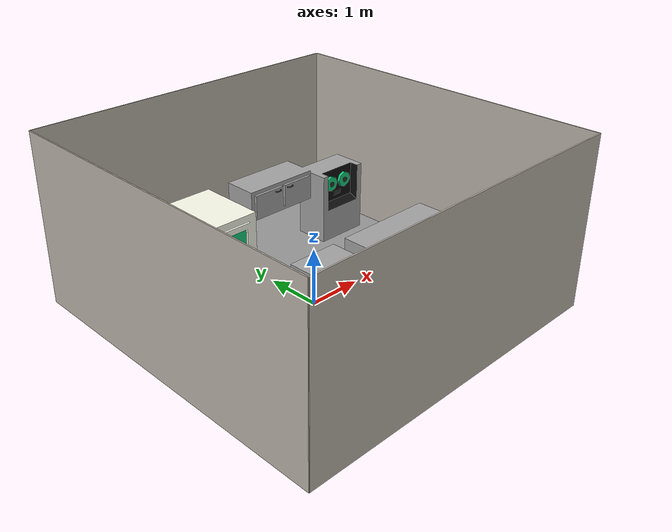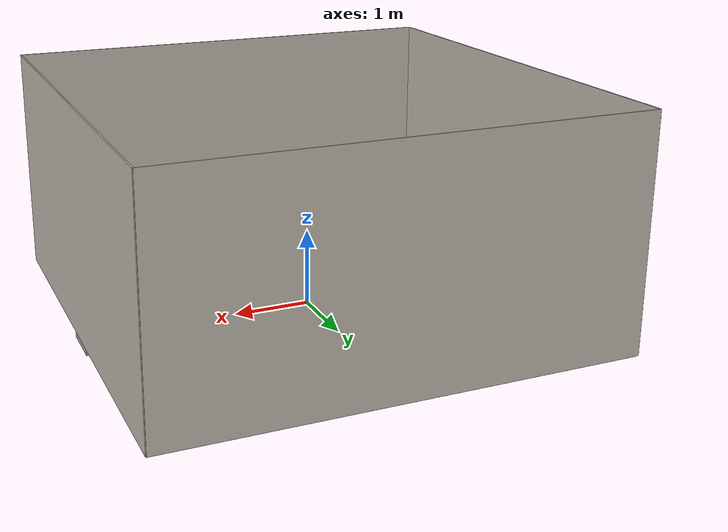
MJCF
<mujoco model="lab">
  <compiler angle="radian" autolimits="true"/>

  <default>
    <default class="visual">
      <geom group="0" type="mesh" contype="0" conaffinity="0"/>
    </default>
    <default class="collision">
      <geom group="3" type="mesh"/>
    </default>
  </default>

    <asset>
        <texture type="skybox" builtin="gradient" rgb1=".9 .9 .9" rgb2=".9 .9 .9" width="100" height="100"/>
        <texture file="textures/floor_gray.png" type="2d" name="texplane"/>

        <material name="floorplane" reflectance="0.0" shininess="0.0"
	        specular="0.0" texrepeat="3 3" texture="texplane" texuniform="true"/>
        <texture file="textures/plaster0.png" type="2d" name="tex-wall"/>
        <material name="walls_mat" reflectance="0.0" shininess="0.1" specular="0.8" texrepeat="3 3" texture="tex-wall" texuniform="true" />
        <material name="white" rgba="1 1 1 1"/>
        <material name="gray" rgba="0.753 0.753 0.753 1"/>
        <material name="black" rgba="0.149 0.149 0.149 1"/>
    </asset>

  <asset>
    <material name="balcony_base" specular="0.5" shininess="0.25" rgba="0.650005 0.650005 0.650005 1.000000"/>
    <material name="balcony_metal" specular="0.5" shininess="0.25" rgba="0.201901 0.201901 0.201901 1.000000"/>
    <material name="balcony_table" specular="0.5" shininess="0.25" rgba="0.071850 0.814041 0.482953 1.000000"/>
    <material name="mix_bege" specular="0.5" shininess="0.25" rgba="0.996120 1.000000 0.933511 1.000000"/>
    <material name="mix_button" specular="0.5" shininess="0.25" rgba="0.057802 0.057802 0.057802 1.000000"/>
    <material name="mix_glass" specular="0.5" shininess="0.25" rgba="0.002644 0.800000 0.689480 1.000000"/>
    <material name="potion_glass" specular="0.601695" shininess="0.25" rgba="0.029590 0.647717 0.800000 1.000000"/>
    <material name="potion_greenglow" specular="0.5" shininess="0.25" rgba="0.065005 0.800000 0.007147 1.000000"/>
    <material name="potion_valve" specular="0.5" shininess="0.25" rgba="0.239554 0.081257 0.010696 1.000000"/>
    <mesh file="lab/lab_0.obj" scale="0.3 0.3 0.3"/>
    <mesh file="lab/lab_1.obj" scale="0.3 0.3 0.3"/>
    <mesh file="lab/lab_2.obj" scale="0.3 0.3 0.3"/>
    <mesh file="lab/lab_3.obj" scale="0.3 0.3 0.3"/>
    <mesh file="lab/lab_4.obj" scale="0.3 0.3 0.3"/>
    <mesh file="lab/lab_5.obj" scale="0.3 0.3 0.3"/>
    <mesh file="lab/lab_6.obj" scale="0.3 0.3 0.3"/>
    <mesh file="lab/lab_7.obj" scale="0.3 0.3 0.3"/>
    <mesh file="lab/lab_8.obj" scale="0.3 0.3 0.3"/>
  </asset>
  <worldbody>

    <geom condim="3" group="1" material="floorplane" name="floor" pos="0 0 0" size="3 3 .125" type="plane"/>
    <geom pos="0 3 1.5" quat="0.7071 0.7071 0 0" size="3 1.5 0.01" type="box" conaffinity="0" contype="0" group="1" name="wall_left_visual" material="walls_mat"/>
    <geom pos="0 -3 1.5" quat="0.7071 -0.7071 0 0" size="3 1.5 0.01" type="box" conaffinity="0" contype="0" group="1" name="wall_right_visual" material="walls_mat"/>
    <geom pos="-3 0 1.5" quat="0.5 0.5 0.5 0.5" size="3 1.5 0.01" type="box" conaffinity="0" contype="0" group="1" name="wall_rear_visual" material="walls_mat"/>
    <geom pos="3 0 1.5" quat="0.5 0.5 -0.5 -0.5" size="3 1.5 0.01" type="box" conaffinity="0" contype="0" group="1" name="wall_front_visual" material="walls_mat"/>

    <body name="lab" pos="-0.2 0.1 -0.1">
      <geom type="mesh" mesh="lab_0" material="potion_greenglow" class="visual"/>
      <geom type="mesh" mesh="lab_1" material="potion_glass" class="visual"/>
      <geom type="mesh" mesh="lab_2" material="mix_button" class="visual"/>
      <geom type="mesh" mesh="lab_3" material="potion_valve" class="visual"/>
      <geom type="mesh" mesh="lab_4" material="mix_glass" class="visual"/>
      <geom type="mesh" mesh="lab_5" material="balcony_table" class="visual"/>
      <geom type="mesh" mesh="lab_6" material="mix_bege" class="visual"/>
      <geom type="mesh" mesh="lab_7" material="balcony_metal" class="visual"/>
      <geom type="mesh" mesh="lab_8" material="balcony_base" class="visual"/>
    </body>

  </worldbody>
</mujoco>
